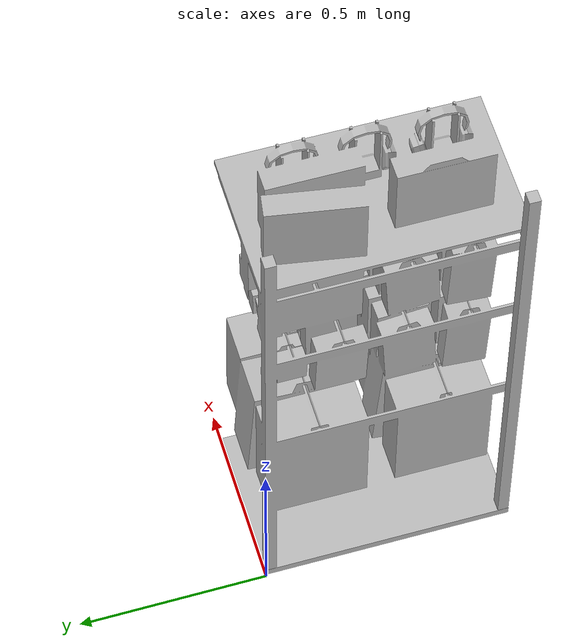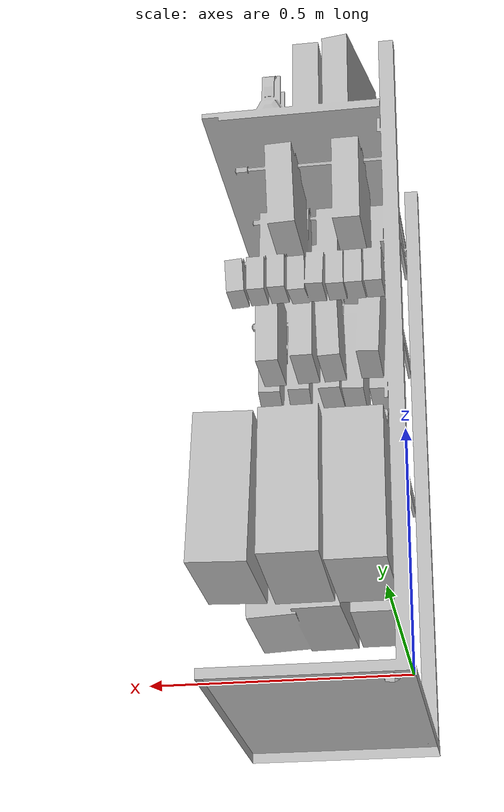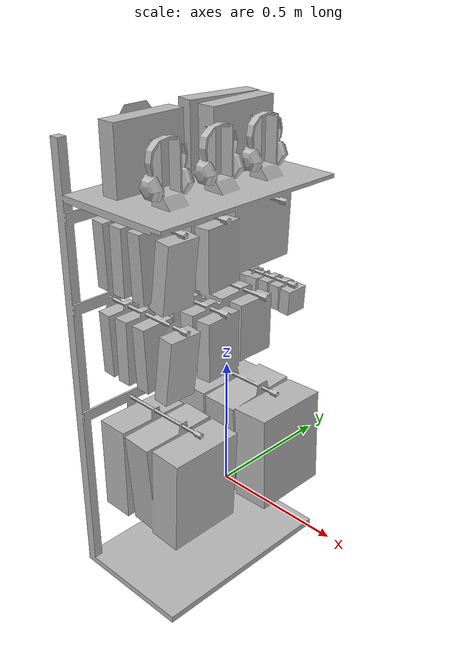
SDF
<?xml version='1.0' encoding='utf-8'?>
<sdf version="1.6">
  <model name="HeadphonesRack1">
   <static>true</static>
    <link name="body">
      <pose>0 0 0 0 0 0</pose>

      <visual name="visual">
        <geometry>
          <mesh>
            <uri>model://HeadphonesRack1/meshes/HeadphonesRack1.obj</uri>
          </mesh>
        </geometry>
      </visual>

      <collision name="collision">
        <geometry>
          <mesh>
            <uri>model://HeadphonesRack1/meshes/HeadphonesRack1_Col.obj</uri>
          </mesh>
        </geometry>
      </collision>

    </link>
  </model>
</sdf>
